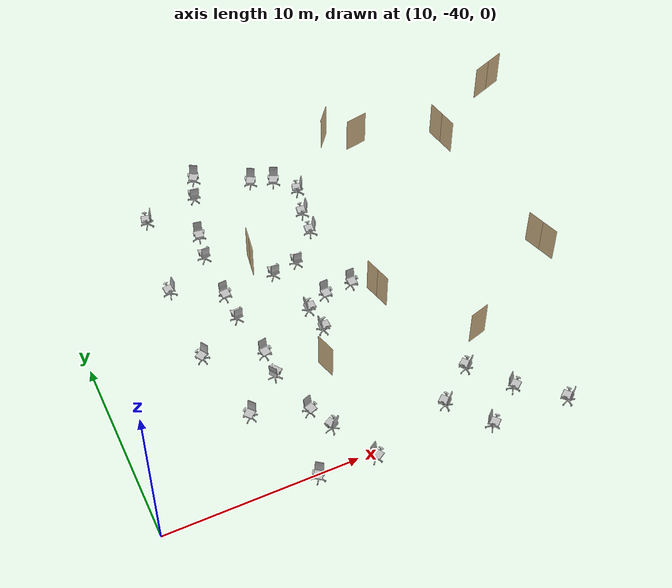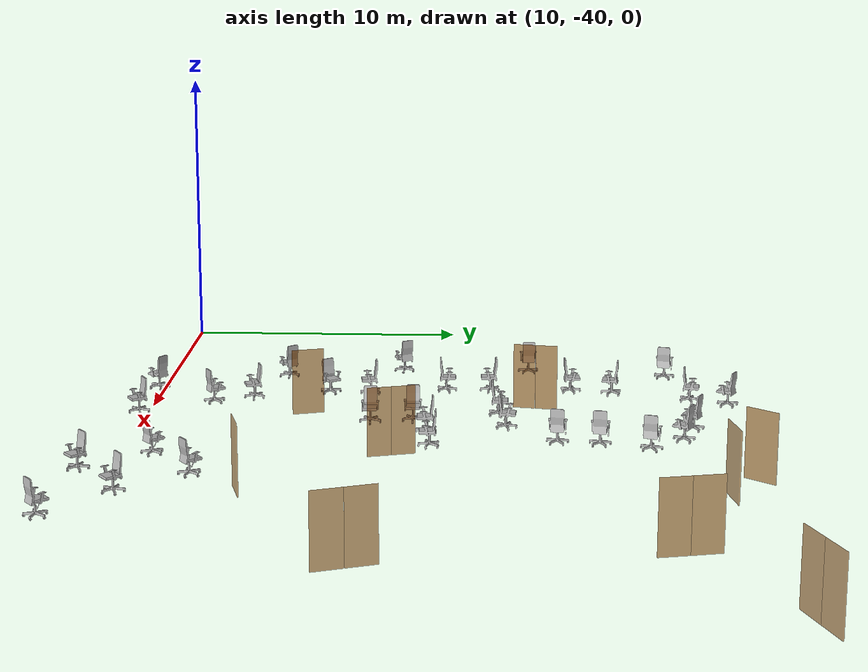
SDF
<sdf version="1.7">
 <world name="world">
  <include><uri>model://sun</uri></include>
  <include>
   <name>OpenRobotics/OfficeChairBlue_112</name>
   <uri>model://OfficeChairBlue</uri>
   <pose>28.684109148131032 -39.6439150717629 0.0 0 0 0.6948</pose>
   <static>True</static>
  </include>
  <include>
   <name>OpenRobotics/OfficeChairBlue_113</name>
   <uri>model://OfficeChairBlue</uri>
   <pose>26.942238743448097 -37.48002140886513 0.0 0 0 -2.4646</pose>
   <static>True</static>
  </include>
  <include>
   <name>OpenRobotics/OfficeChairBlue_114</name>
   <uri>model://OfficeChairBlue</uri>
   <pose>25.029830076134587 -38.97051908805111 0.0 0 0 -2.4364</pose>
   <static>True</static>
  </include>
  <include>
   <name>OpenRobotics/OfficeChairBlue_115</name>
   <uri>model://OfficeChairBlue</uri>
   <pose>26.735774052876913 -41.14328208784673 0.0 0 0 0.7381</pose>
   <static>True</static>
  </include>
  <include>
   <name>OpenRobotics/OfficeChairBlue_119</name>
   <uri>model://OfficeChairBlue</uri>
   <pose>30.607969364350616 -41.177299924302986 0.0 0 0 -2.4251</pose>
   <static>True</static>
  </include>
  <include>
   <name>OpenRobotics/OfficeChairBlue_124</name>
   <uri>model://OfficeChairBlue</uri>
   <pose>21.50095669166832 -31.112735676916166 0.0 0 0 1.5708</pose>
   <static>True</static>
  </include>
  <include>
   <name>OpenRobotics/OfficeChairBlue_125</name>
   <uri>model://OfficeChairBlue</uri>
   <pose>24.037137964100648 -30.61930864316937 0.0 0 0 0.0191</pose>
   <static>True</static>
  </include>
  <include>
   <name>OpenRobotics/OfficeChairBlue_126</name>
   <uri>model://OfficeChairBlue</uri>
   <pose>22.04221078261105 -27.9284191904178 0.0 0 0 3.045</pose>
   <static>True</static>
  </include>
  <include>
   <name>OpenRobotics/OfficeChairBlue_127</name>
   <uri>model://OfficeChairBlue</uri>
   <pose>23.428185010507335 -26.42938898459591 0.0 0 0 -1.6897</pose>
   <static>True</static>
  </include>
  <include>
   <name>OpenRobotics/OfficeChairBlue_128</name>
   <uri>model://OfficeChairBlue</uri>
   <pose>23.556509720307695 -25.082147936823095 0.0 0 0 -1.729</pose>
   <static>True</static>
  </include>
  <include>
   <name>OpenRobotics/OfficeChairBlue_129</name>
   <uri>model://OfficeChairBlue</uri>
   <pose>23.97718573747476 -23.49768019455495 0.0 0 0 -1.848</pose>
   <static>True</static>
  </include>
  <include>
   <name>OpenRobotics/OfficeChairBlue_130</name>
   <uri>model://OfficeChairBlue</uri>
   <pose>21.908721648794227 -22.083526174742747 0.0 0 0 -0.4761</pose>
   <static>True</static>
  </include>
  <include>
   <name>OpenRobotics/OfficeChairBlue_147</name>
   <uri>model://OfficeChairBlue</uri>
   <pose>18.317538365868472 -34.050507051672106 0.0 0 0 2.1803</pose>
   <static>True</static>
  </include>
  <include>
   <name>OpenRobotics/OfficeChairBlue_148</name>
   <uri>model://OfficeChairBlue</uri>
   <pose>18.25713705889332 -32.83316249492205 0.0 0 0 0.1423</pose>
   <static>True</static>
  </include>
  <include>
   <name>OpenRobotics/OfficeChairBlue_149</name>
   <uri>model://OfficeChairBlue</uri>
   <pose>17.84364632731438 -29.96297771272938 0.0 0 0 -3.1148</pose>
   <static>True</static>
  </include>
  <include>
   <name>OpenRobotics/OfficeChairBlue_150</name>
   <uri>model://OfficeChairBlue</uri>
   <pose>17.79503337950725 -28.673892570185426 0.0 0 0 0.0683</pose>
   <static>True</static>
  </include>
  <include>
   <name>OpenRobotics/OfficeChairBlue_151</name>
   <uri>model://OfficeChairBlue</uri>
   <pose>17.77067077056002 -25.63350633562412 0.0 0 0 -3.0884</pose>
   <static>True</static>
  </include>
  <include>
   <name>OpenRobotics/OfficeChairBlue_152</name>
   <uri>model://OfficeChairBlue</uri>
   <pose>17.989597440823104 -24.46600969764166 0.0 0 0 -0.1563</pose>
   <static>True</static>
  </include>
  <include>
   <name>OpenRobotics/OfficeChairBlue_153</name>
   <uri>model://OfficeChairBlue</uri>
   <pose>18.783683768397864 -21.61008321653792 0.0 0 0 2.9724</pose>
   <static>True</static>
  </include>
  <include>
   <name>OpenRobotics/OfficeChairBlue_154</name>
   <uri>model://OfficeChairBlue</uri>
   <pose>19.15709407880556 -20.598641999922474 0.0 0 0 -0.4997</pose>
   <static>True</static>
  </include>
  <include>
   <name>OpenRobotics/OfficeChairBlue_172</name>
   <uri>model://OfficeChairBlue</uri>
   <pose>15.75194233055977 -22.276967535185463 0.0 0 0 -1.7987</pose>
   <static>True</static>
  </include>
  <include>
   <name>OpenRobotics/OfficeChairBlue_173</name>
   <uri>model://OfficeChairBlue</uri>
   <pose>15.197889449663199 -27.176770955847882 0.0 0 0 -1.5117</pose>
   <static>True</static>
  </include>
  <include>
   <name>OpenRobotics/OfficeChairBlue_174</name>
   <uri>model://OfficeChairBlue</uri>
   <pose>15.235387658826209 -31.733364719590174 0.0 0 0 -1.014</pose>
   <static>True</static>
  </include>
  <include>
   <name>OpenRobotics/OfficeChairBlue_175</name>
   <uri>model://OfficeChairBlue</uri>
   <pose>17.759331491741268 -40.322026399141876 0.0 0 0 -0.6092</pose>
   <static>True</static>
  </include>
  <include>
   <name>OpenRobotics/OfficeChairBlue_176</name>
   <uri>model://OfficeChairBlue</uri>
   <pose>16.10884893813225 -35.868047495204955 0.0 0 0 -0.8679</pose>
   <static>True</static>
  </include>
  <include>
   <name>OpenRobotics/OfficeChairBlue_177</name>
   <uri>model://OfficeChairBlue</uri>
   <pose>20.814874188090016 -40.46281308863414 0.0 0 0 0.5517</pose>
   <static>True</static>
  </include>
  <include>
   <name>OpenRobotics/OfficeChairBlue_178</name>
   <uri>model://OfficeChairBlue</uri>
   <pose>19.468082220666457 -37.88969495747538 0.0 0 0 -2.6029</pose>
   <static>True</static>
  </include>
  <include>
   <name>OpenRobotics/OfficeChairBlue_179</name>
   <uri>model://OfficeChairBlue</uri>
   <pose>18.969603032990513 -36.81347390047952 0.0 0 0 0.3213</pose>
   <static>True</static>
  </include>
  <include>
   <name>OpenRobotics/OfficeChairBlue_212</name>
   <uri>model://OfficeChairBlue</uri>
   <pose>20.64006966214149 -28.166768585786272 0.0 0 0 3.1154</pose>
   <static>True</static>
  </include>
  <include>
   <name>OpenRobotics/OfficeChairBlue_213</name>
   <uri>model://OfficeChairBlue</uri>
   <pose>23.0786882286976 -22.508917535577016 0.0 0 0 -0.4677</pose>
   <static>True</static>
  </include>
  <include>
   <name>OpenRobotics/OfficeChairBlue_214</name>
   <uri>model://OfficeChairBlue</uri>
   <pose>21.6730667355213 -32.51274366572675 0.0 0 0 1.5708</pose>
   <static>True</static>
  </include>
  <include>
   <name>OpenRobotics/OfficeChairBlue_215</name>
   <uri>model://OfficeChairBlue</uri>
   <pose>22.52227767596743 -30.74550022131076 0.0 0 0 0.0566</pose>
   <static>True</static>
  </include>
  <model name="double_hinged_5">
   <pose>34.097828893475125 -32.346864611719724 0.0 0 0 1.91438565485268</pose>
   <link name="right">
    <pose>0.4641693371814807 0 1.11 0 0 0</pose>
    <visual name="right_visual">
     <geometry><box><size>0.9183386743629613 0.03 2.2</size></box></geometry>
     <material><ambient>0.5 0.25 0 0.6</ambient><diffuse>0.5 0.25 0 0.6</diffuse></material>
    </visual>
    <collision name="right_collision">
     <geometry><box><size>0.9183386743629613 0.03 2.2</size></box></geometry>
     <surface><contact><collide_bitmask>0x02</collide_bitmask></contact></surface>
    </collision>
    <inertial>
     <mass>50.0</mass>
     <inertia><ixx>20.17041666666667</ixx><iyy>23.680608003461344</iyy><izz>3.517691336794672</izz></inertia>
    </inertial>
   </link>
   <joint name="right_joint" type="revolute">
    <parent>world</parent>
    <child>right</child>
    <axis><xyz>0 0 -1</xyz><limit><lower>0</lower><upper>1.57</upper></limit></axis>
    <pose>0.4641693371814807 0 0 0 0 0</pose>
   </joint>
   <link name="left">
    <pose>-0.4641693371814807 0 1.11 0 0 0</pose>
    <visual name="left_visual">
     <geometry><box><size>0.9183386743629613 0.03 2.2</size></box></geometry>
     <material><ambient>0.5 0.25 0 0.6</ambient><diffuse>0.5 0.25 0 0.6</diffuse></material>
    </visual>
    <collision name="left_collision">
     <geometry><box><size>0.9183386743629613 0.03 2.2</size></box></geometry>
     <surface><contact><collide_bitmask>0x02</collide_bitmask></contact></surface>
    </collision>
    <inertial>
     <mass>50.0</mass>
     <inertia><ixx>20.17041666666667</ixx><iyy>23.680608003461344</iyy><izz>3.517691336794672</izz></inertia>
    </inertial>
   </link>
   <joint name="left_joint" type="revolute">
    <parent>world</parent>
    <child>left</child>
    <axis><xyz>0 0 -1</xyz><limit><lower>-1.57</lower><upper>0</upper></limit></axis>
    <pose>-0.4641693371814807 0 0 0 0 0</pose>
   </joint>
   <plugin name="door" filename="libdoor.so">
    <v_max_door>0.5</v_max_door>
    <a_max_door>0.3</a_max_door>
    <a_nom_door>0.15</a_nom_door>
    <dx_min_door>0.01</dx_min_door>
    <f_max_door>500.0</f_max_door>
    <door name="double_hinged_5" type="DoubleSwingDoor" left_joint_name="left_joint" right_joint_name="right_joint"/>
   </plugin>
  </model>
  <model name="double_hinged_9">
   <pose>19.82953576677517 -27.052207293972554 0.0 0 0 -1.7315651079040504</pose>
   <link name="right">
    <pose>0.37189083219811875 0 1.11 0 0 0</pose>
    <visual name="right_visual">
     <geometry><box><size>0.7337816643962375 0.03 2.2</size></box></geometry>
     <material><ambient>0.5 0.25 0 0.6</ambient><diffuse>0.5 0.25 0 0.6</diffuse></material>
    </visual>
    <collision name="right_collision">
     <geometry><box><size>0.7337816643962375 0.03 2.2</size></box></geometry>
     <surface><contact><collide_bitmask>0x02</collide_bitmask></contact></surface>
    </collision>
    <inertial>
     <mass>50.0</mass>
     <inertia><ixx>20.17041666666667</ixx><iyy>22.410148045850473</iyy><izz>2.247231379183802</izz></inertia>
    </inertial>
   </link>
   <joint name="right_joint" type="revolute">
    <parent>world</parent>
    <child>right</child>
    <axis><xyz>0 0 -1</xyz><limit><lower>0</lower><upper>1.57</upper></limit></axis>
    <pose>0.37189083219811875 0 0 0 0 0</pose>
   </joint>
   <link name="left">
    <pose>-0.37189083219811875 0 1.11 0 0 0</pose>
    <visual name="left_visual">
     <geometry><box><size>0.7337816643962375 0.03 2.2</size></box></geometry>
     <material><ambient>0.5 0.25 0 0.6</ambient><diffuse>0.5 0.25 0 0.6</diffuse></material>
    </visual>
    <collision name="left_collision">
     <geometry><box><size>0.7337816643962375 0.03 2.2</size></box></geometry>
     <surface><contact><collide_bitmask>0x02</collide_bitmask></contact></surface>
    </collision>
    <inertial>
     <mass>50.0</mass>
     <inertia><ixx>20.17041666666667</ixx><iyy>22.410148045850473</iyy><izz>2.247231379183802</izz></inertia>
    </inertial>
   </link>
   <joint name="left_joint" type="revolute">
    <parent>world</parent>
    <child>left</child>
    <axis><xyz>0 0 -1</xyz><limit><lower>-1.57</lower><upper>0</upper></limit></axis>
    <pose>-0.37189083219811875 0 0 0 0 0</pose>
   </joint>
   <plugin name="door" filename="libdoor.so">
    <v_max_door>0.5</v_max_door>
    <a_max_door>0.3</a_max_door>
    <a_nom_door>0.15</a_nom_door>
    <dx_min_door>0.01</dx_min_door>
    <f_max_door>500.0</f_max_door>
    <door name="double_hinged_9" type="DoubleSwingDoor" left_joint_name="left_joint" right_joint_name="right_joint"/>
   </plugin>
  </model>
  <model name="door_54">
   <pose>20.695699490405776 -34.64800845635935 0.0 0 0 -1.281477711603412</pose>
   <link name="right">
    <pose>0 0 1.11 0 0 0</pose>
    <visual name="right_visual">
     <geometry><box><size>1.0662689165317187 0.03 2.2</size></box></geometry>
     <material><ambient>0.5 0.25 0 0.6</ambient><diffuse>0.5 0.25 0 0.6</diffuse></material>
    </visual>
    <collision name="right_collision">
     <geometry><box><size>1.0662689165317187 0.03 2.2</size></box></geometry>
     <surface><contact><collide_bitmask>0x02</collide_bitmask></contact></surface>
    </collision>
    <inertial>
     <mass>50.0</mass>
     <inertia><ixx>20.17041666666667</ixx><iyy>24.90387250984053</iyy><izz>4.740955843173856</izz></inertia>
    </inertial>
   </link>
   <joint name="right_joint" type="revolute">
    <parent>world</parent>
    <child>right</child>
    <axis><xyz>0 0 -1</xyz><limit><lower>0</lower><upper>1.57</upper></limit></axis>
    <pose>0.5381344582658594 0 0 0 0 0</pose>
   </joint>
   <plugin name="door" filename="libdoor.so">
    <v_max_door>0.5</v_max_door>
    <a_max_door>0.3</a_max_door>
    <a_nom_door>0.15</a_nom_door>
    <dx_min_door>0.01</dx_min_door>
    <f_max_door>500.0</f_max_door>
    <door name="door_54" type="SwingDoor" left_joint_name="empty_joint" right_joint_name="right_joint"/>
   </plugin>
  </model>
  <model name="door_56">
   <pose>28.460467134200748 -35.99216207673102 0.0 0 0 0.28763399085108127</pose>
   <link name="right">
    <pose>0 0 1.11 0 0 0</pose>
    <visual name="right_visual">
     <geometry><box><size>1.0589403635154118 0.03 2.2</size></box></geometry>
     <material><ambient>0.5 0.25 0 0.6</ambient><diffuse>0.5 0.25 0 0.6</diffuse></material>
    </visual>
    <collision name="right_collision">
     <geometry><box><size>1.0589403635154118 0.03 2.2</size></box></geometry>
     <surface><contact><collide_bitmask>0x02</collide_bitmask></contact></surface>
    </collision>
    <inertial>
     <mass>50.0</mass>
     <inertia><ixx>20.17041666666667</ixx><iyy>24.838977889508975</iyy><izz>4.676061222842301</izz></inertia>
    </inertial>
   </link>
   <joint name="right_joint" type="revolute">
    <parent>world</parent>
    <child>right</child>
    <axis><xyz>0 0 -1</xyz><limit><lower>0</lower><upper>1.57</upper></limit></axis>
    <pose>0.5344701817577059 0 0 0 0 0</pose>
   </joint>
   <plugin name="door" filename="libdoor.so">
    <v_max_door>0.5</v_max_door>
    <a_max_door>0.3</a_max_door>
    <a_nom_door>0.15</a_nom_door>
    <dx_min_door>0.01</dx_min_door>
    <f_max_door>500.0</f_max_door>
    <door name="door_56" type="SwingDoor" left_joint_name="empty_joint" right_joint_name="right_joint"/>
   </plugin>
  </model>
  <model name="double_hinged_10">
   <pose>24.956573844161937 -31.63961919668265 0.0 0 0 1.839946694030745</pose>
   <link name="right">
    <pose>0.38135838101562874 0 1.11 0 0 0</pose>
    <visual name="right_visual">
     <geometry><box><size>0.7527167620312575 0.03 2.2</size></box></geometry>
     <material><ambient>0.5 0.25 0 0.6</ambient><diffuse>0.5 0.25 0 0.6</diffuse></material>
    </visual>
    <collision name="right_collision">
     <geometry><box><size>0.7527167620312575 0.03 2.2</size></box></geometry>
     <surface><contact><collide_bitmask>0x02</collide_bitmask></contact></surface>
    </collision>
    <inertial>
     <mass>50.0</mass>
     <inertia><ixx>20.17041666666667</ixx><iyy>22.527427182678426</iyy><izz>2.364510516011753</izz></inertia>
    </inertial>
   </link>
   <joint name="right_joint" type="revolute">
    <parent>world</parent>
    <child>right</child>
    <axis><xyz>0 0 -1</xyz><limit><lower>0</lower><upper>1.57</upper></limit></axis>
    <pose>0.38135838101562874 0 0 0 0 0</pose>
   </joint>
   <link name="left">
    <pose>-0.38135838101562874 0 1.11 0 0 0</pose>
    <visual name="left_visual">
     <geometry><box><size>0.7527167620312575 0.03 2.2</size></box></geometry>
     <material><ambient>0.5 0.25 0 0.6</ambient><diffuse>0.5 0.25 0 0.6</diffuse></material>
    </visual>
    <collision name="left_collision">
     <geometry><box><size>0.7527167620312575 0.03 2.2</size></box></geometry>
     <surface><contact><collide_bitmask>0x02</collide_bitmask></contact></surface>
    </collision>
    <inertial>
     <mass>50.0</mass>
     <inertia><ixx>20.17041666666667</ixx><iyy>22.527427182678426</iyy><izz>2.364510516011753</izz></inertia>
    </inertial>
   </link>
   <joint name="left_joint" type="revolute">
    <parent>world</parent>
    <child>left</child>
    <axis><xyz>0 0 -1</xyz><limit><lower>-1.57</lower><upper>0</upper></limit></axis>
    <pose>-0.38135838101562874 0 0 0 0 0</pose>
   </joint>
   <plugin name="door" filename="libdoor.so">
    <v_max_door>0.5</v_max_door>
    <a_max_door>0.3</a_max_door>
    <a_nom_door>0.15</a_nom_door>
    <dx_min_door>0.01</dx_min_door>
    <f_max_door>500.0</f_max_door>
    <door name="double_hinged_10" type="DoubleSwingDoor" left_joint_name="left_joint" right_joint_name="right_joint"/>
   </plugin>
  </model>
  <model name="door_58">
   <pose>26.944371875107073 -20.5945441417355 0.0 0 0 0.893622733396204</pose>
   <link name="right">
    <pose>0 0 1.11 0 0 0</pose>
    <visual name="right_visual">
     <geometry><box><size>1.0711450911697222 0.03 2.2</size></box></geometry>
     <material><ambient>0.5 0.25 0 0.6</ambient><diffuse>0.5 0.25 0 0.6</diffuse></material>
    </visual>
    <collision name="right_collision">
     <geometry><box><size>1.0711450911697222 0.03 2.2</size></box></geometry>
     <surface><contact><collide_bitmask>0x02</collide_bitmask></contact></surface>
    </collision>
    <inertial>
     <mass>50.0</mass>
     <inertia><ixx>20.17041666666667</ixx><iyy>24.947299193070805</iyy><izz>4.784382526404135</izz></inertia>
    </inertial>
   </link>
   <joint name="right_joint" type="revolute">
    <parent>world</parent>
    <child>right</child>
    <axis><xyz>0 0 -1</xyz><limit><lower>0</lower><upper>1.57</upper></limit></axis>
    <pose>0.5405725455848611 0 0 0 0 0</pose>
   </joint>
   <plugin name="door" filename="libdoor.so">
    <v_max_door>0.5</v_max_door>
    <a_max_door>0.3</a_max_door>
    <a_nom_door>0.15</a_nom_door>
    <dx_min_door>0.01</dx_min_door>
    <f_max_door>500.0</f_max_door>
    <door name="door_58" type="SwingDoor" left_joint_name="empty_joint" right_joint_name="right_joint"/>
   </plugin>
  </model>
  <model name="door_59">
   <pose>28.45300117339434 -21.618952553435758 0.0 0 0 0.17916546595803962</pose>
   <link name="right">
    <pose>0 0 1.11 0 0 0</pose>
    <visual name="right_visual">
     <geometry><box><size>1.2159664314494854 0.03 2.2</size></box></geometry>
     <material><ambient>0.5 0.25 0 0.6</ambient><diffuse>0.5 0.25 0 0.6</diffuse></material>
    </visual>
    <collision name="right_collision">
     <geometry><box><size>1.2159664314494854 0.03 2.2</size></box></geometry>
     <surface><contact><collide_bitmask>0x02</collide_bitmask></contact></surface>
    </collision>
    <inertial>
     <mass>50.0</mass>
     <inertia><ixx>20.17041666666667</ixx><iyy>26.327393176716658</iyy><izz>6.164476510049983</izz></inertia>
    </inertial>
   </link>
   <joint name="right_joint" type="revolute">
    <parent>world</parent>
    <child>right</child>
    <axis><xyz>0 0 -1</xyz><limit><lower>0</lower><upper>1.57</upper></limit></axis>
    <pose>0.6129832157247427 0 0 0 0 0</pose>
   </joint>
   <plugin name="door" filename="libdoor.so">
    <v_max_door>0.5</v_max_door>
    <a_max_door>0.3</a_max_door>
    <a_nom_door>0.15</a_nom_door>
    <dx_min_door>0.01</dx_min_door>
    <f_max_door>500.0</f_max_door>
    <door name="door_59" type="SwingDoor" left_joint_name="empty_joint" right_joint_name="right_joint"/>
   </plugin>
  </model>
  <model name="double_hinged_12">
   <pose>32.86291406806036 -23.328489172972148 0.0 0 0 1.7827900862026616</pose>
   <link name="right">
    <pose>0.46154594746768873 0 1.11 0 0 0</pose>
    <visual name="right_visual">
     <geometry><box><size>0.9130918949353775 0.03 2.2</size></box></geometry>
     <material><ambient>0.5 0.25 0 0.6</ambient><diffuse>0.5 0.25 0 0.6</diffuse></material>
    </visual>
    <collision name="right_collision">
     <geometry><box><size>0.9130918949353775 0.03 2.2</size></box></geometry>
     <surface><contact><collide_bitmask>0x02</collide_bitmask></contact></surface>
    </collision>
    <inertial>
     <mass>50.0</mass>
     <inertia><ixx>20.17041666666667</ixx><iyy>23.640570035819497</iyy><izz>3.477653369152827</izz></inertia>
    </inertial>
   </link>
   <joint name="right_joint" type="revolute">
    <parent>world</parent>
    <child>right</child>
    <axis><xyz>0 0 -1</xyz><limit><lower>0</lower><upper>1.57</upper></limit></axis>
    <pose>0.46154594746768873 0 0 0 0 0</pose>
   </joint>
   <link name="left">
    <pose>-0.46154594746768873 0 1.11 0 0 0</pose>
    <visual name="left_visual">
     <geometry><box><size>0.9130918949353775 0.03 2.2</size></box></geometry>
     <material><ambient>0.5 0.25 0 0.6</ambient><diffuse>0.5 0.25 0 0.6</diffuse></material>
    </visual>
    <collision name="left_collision">
     <geometry><box><size>0.9130918949353775 0.03 2.2</size></box></geometry>
     <surface><contact><collide_bitmask>0x02</collide_bitmask></contact></surface>
    </collision>
    <inertial>
     <mass>50.0</mass>
     <inertia><ixx>20.17041666666667</ixx><iyy>23.640570035819497</iyy><izz>3.477653369152827</izz></inertia>
    </inertial>
   </link>
   <joint name="left_joint" type="revolute">
    <parent>world</parent>
    <child>left</child>
    <axis><xyz>0 0 -1</xyz><limit><lower>-1.57</lower><upper>0</upper></limit></axis>
    <pose>-0.46154594746768873 0 0 0 0 0</pose>
   </joint>
   <plugin name="door" filename="libdoor.so">
    <v_max_door>0.5</v_max_door>
    <a_max_door>0.3</a_max_door>
    <a_nom_door>0.15</a_nom_door>
    <dx_min_door>0.01</dx_min_door>
    <f_max_door>500.0</f_max_door>
    <door name="double_hinged_12" type="DoubleSwingDoor" left_joint_name="left_joint" right_joint_name="right_joint"/>
   </plugin>
  </model>
  <model name="double_hinged_14">
   <pose>37.11110190195 -20.74543513908606 0.0 0 0 0.35877067027057225</pose>
   <link name="right">
    <pose>0.48992981075057374 0 1.11 0 0 0</pose>
    <visual name="right_visual">
     <geometry><box><size>0.9698596215011475 0.03 2.2</size></box></geometry>
     <material><ambient>0.5 0.25 0 0.6</ambient><diffuse>0.5 0.25 0 0.6</diffuse></material>
    </visual>
    <collision name="right_collision">
     <geometry><box><size>0.9698596215011475 0.03 2.2</size></box></geometry>
     <surface><contact><collide_bitmask>0x02</collide_bitmask></contact></surface>
    </collision>
    <inertial>
     <mass>50.0</mass>
     <inertia><ixx>20.17041666666667</ixx><iyy>24.085948689243125</iyy><izz>3.923032022576455</izz></inertia>
    </inertial>
   </link>
   <joint name="right_joint" type="revolute">
    <parent>world</parent>
    <child>right</child>
    <axis><xyz>0 0 -1</xyz><limit><lower>0</lower><upper>1.57</upper></limit></axis>
    <pose>0.48992981075057374 0 0 0 0 0</pose>
   </joint>
   <link name="left">
    <pose>-0.48992981075057374 0 1.11 0 0 0</pose>
    <visual name="left_visual">
     <geometry><box><size>0.9698596215011475 0.03 2.2</size></box></geometry>
     <material><ambient>0.5 0.25 0 0.6</ambient><diffuse>0.5 0.25 0 0.6</diffuse></material>
    </visual>
    <collision name="left_collision">
     <geometry><box><size>0.9698596215011475 0.03 2.2</size></box></geometry>
     <surface><contact><collide_bitmask>0x02</collide_bitmask></contact></surface>
    </collision>
    <inertial>
     <mass>50.0</mass>
     <inertia><ixx>20.17041666666667</ixx><iyy>24.085948689243125</iyy><izz>3.923032022576455</izz></inertia>
    </inertial>
   </link>
   <joint name="left_joint" type="revolute">
    <parent>world</parent>
    <child>left</child>
    <axis><xyz>0 0 -1</xyz><limit><lower>-1.57</lower><upper>0</upper></limit></axis>
    <pose>-0.48992981075057374 0 0 0 0 0</pose>
   </joint>
   <plugin name="door" filename="libdoor.so">
    <v_max_door>0.5</v_max_door>
    <a_max_door>0.3</a_max_door>
    <a_nom_door>0.15</a_nom_door>
    <dx_min_door>0.01</dx_min_door>
    <f_max_door>500.0</f_max_door>
    <door name="double_hinged_14" type="DoubleSwingDoor" left_joint_name="left_joint" right_joint_name="right_joint"/>
   </plugin>
  </model>
 </world>
</sdf>
